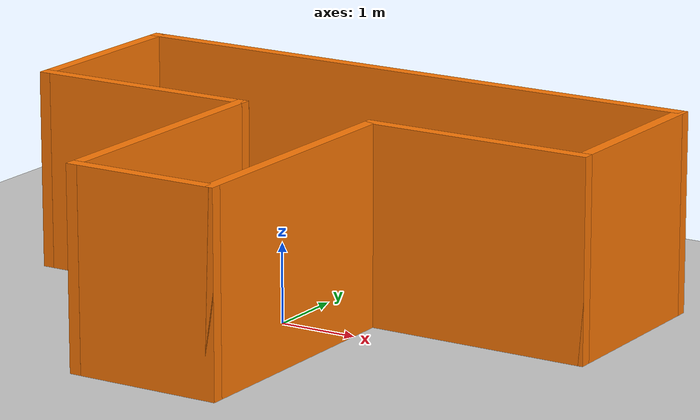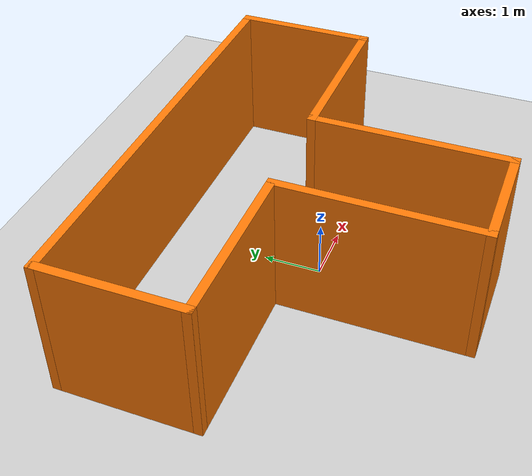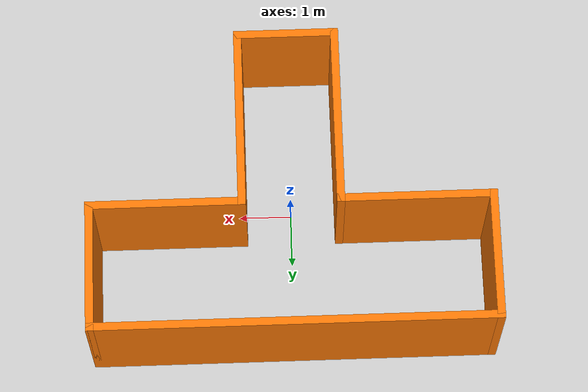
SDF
<sdf version="1.6">
 <world name="default">
  <light name="sun" type="directional">
   <pose>0 0 15 0 -0 0</pose>
   <diffuse>1 1 1 1</diffuse>
   <specular>0.1 0.1 0.1 1</specular>
   <attenuation>
    <range>1000</range>
    <constant>0.9</constant>
    <linear>0.01</linear>
    <quadratic>0.001</quadratic>
   </attenuation>
   <direction>-0.5 0.5 -1</direction>
  </light>
  <model name="ground_plane">
   <static>1</static>
   <link name="link">
    <collision name="collision">
     <geometry><plane><normal>0 0 1</normal><size>100 100</size></plane></geometry>
     <surface><friction><ode><mu>100</mu><mu2>50</mu2></ode></friction></surface>
    </collision>
    <visual name="visual">
     <transparency>1</transparency>
     <cast_shadows>0</cast_shadows>
     <geometry><plane><normal>0 0 1</normal><size>100 100</size></plane></geometry>
     <material>
      <script><uri>file://media/materials/scripts/gazebo.material</uri><name>Gazebo/Grey</name></script>
     </material>
    </visual>
   </link>
  </model>
  <gravity>0 0 -9.8</gravity>
  <magnetic_field>6e-06 2.3e-05 -4.2e-05</magnetic_field>
  <atmosphere type="adiabatic"/>
  <physics name="default_physics" default="0" type="ode">
   <max_step_size>0.001</max_step_size>
   <real_time_factor>1</real_time_factor>
   <real_time_update_rate>1000</real_time_update_rate>
  </physics>
  <scene><ambient>0.4 0.4 0.4 1</ambient><background>0.7 0.7 0.7 1</background><shadows>1</shadows></scene>
  <spherical_coordinates>
   <surface_model>EARTH_WGS84</surface_model>
   <latitude_deg>0</latitude_deg>
   <longitude_deg>0</longitude_deg>
   <elevation>0</elevation>
   <heading_deg>0</heading_deg>
  </spherical_coordinates>
  <model name="test_world">
   <link name="Wall_10">
    <collision name="Wall_10_Collision">
     <geometry><box><size>2.5 0.15 2.5</size></box></geometry>
     <pose>0 0 1.25 0 -0 0</pose>
    </collision>
    <visual name="Wall_10_Visual">
     <pose>0 0 1.25 0 -0 0</pose>
     <geometry><box><size>2.5 0.15 2.5</size></box></geometry>
     <material>
      <script><uri>file://media/materials/scripts/gazebo.material</uri><name>Gazebo/Grey</name></script>
      <ambient>0.996078 0.47451 0.0196078 1</ambient>
     </material>
    </visual>
    <pose>3.775 1.67507 0 0 0 -1.5708</pose>
   </link>
   <link name="Wall_11">
    <collision name="Wall_11_Collision">
     <geometry><box><size>3 0.15 2.5</size></box></geometry>
     <pose>0 0 1.25 0 -0 0</pose>
    </collision>
    <visual name="Wall_11_Visual">
     <pose>0 0 1.25 0 -0 0</pose>
     <geometry><box><size>3 0.15 2.5</size></box></geometry>
     <material>
      <script><uri>file://media/materials/scripts/gazebo.material</uri><name>Gazebo/Grey</name></script>
      <ambient>0.996078 0.47451 0.0196078 1</ambient>
     </material>
    </visual>
    <pose>2.35 0.500071 0 0 -0 3.14159</pose>
   </link>
   <link name="Wall_12">
    <collision name="Wall_12_Collision">
     <geometry><box><size>3.5 0.15 2.5</size></box></geometry>
     <pose>0 0 1.25 0 -0 0</pose>
    </collision>
    <visual name="Wall_12_Visual">
     <pose>0 0 1.25 0 -0 0</pose>
     <geometry><box><size>3.5 0.15 2.5</size></box></geometry>
     <material>
      <script><uri>file://media/materials/scripts/gazebo.material</uri><name>Gazebo/Grey</name></script>
      <ambient>0.996078 0.47451 0.0196078 1</ambient>
     </material>
    </visual>
    <pose>0.925 -1.17493 0 0 0 -1.5708</pose>
   </link>
   <link name="Wall_13">
    <collision name="Wall_13_Collision">
     <geometry><box><size>2 0.15 2.5</size></box></geometry>
     <pose>0 0 1.25 0 -0 0</pose>
    </collision>
    <visual name="Wall_13_Visual">
     <pose>0 0 1.25 0 -0 0</pose>
     <geometry><box><size>2 0.15 2.5</size></box></geometry>
     <material>
      <script><uri>file://media/materials/scripts/gazebo.material</uri><name>Gazebo/Grey</name></script>
      <ambient>0.996078 0.47451 0.0196078 1</ambient>
     </material>
    </visual>
    <pose>0 -2.84993 0 0 -0 3.14159</pose>
   </link>
   <link name="Wall_14">
    <collision name="Wall_14_Collision">
     <geometry><box><size>3.50075 0.15 2.5</size></box></geometry>
     <pose>0 0 1.25 0 -0 0</pose>
    </collision>
    <visual name="Wall_14_Visual">
     <pose>0 0 1.25 0 -0 0</pose>
     <geometry><box><size>3.50075 0.15 2.5</size></box></geometry>
     <material>
      <script><uri>file://media/materials/scripts/gazebo.material</uri><name>Gazebo/Grey</name></script>
      <ambient>0.996078 0.47451 0.0196078 1</ambient>
     </material>
    </visual>
    <pose>-0.925 -1.17493 0 0 -0 1.5708</pose>
   </link>
   <link name="Wall_15">
    <collision name="Wall_15_Collision">
     <geometry><box><size>3 0.15 2.5</size></box></geometry>
     <pose>0 0 1.25 0 -0 0</pose>
    </collision>
    <visual name="Wall_15_Visual">
     <pose>0 0 1.25 0 -0 0</pose>
     <geometry><box><size>3 0.15 2.5</size></box></geometry>
     <material>
      <script><uri>file://media/materials/scripts/gazebo.material</uri><name>Gazebo/Grey</name></script>
      <ambient>0.996078 0.47451 0.0196078 1</ambient>
     </material>
    </visual>
    <pose>-2.35 0.500071 0 0 -0 3.14159</pose>
   </link>
   <link name="Wall_16">
    <collision name="Wall_16_Collision">
     <geometry><box><size>2.50047 0.15 2.5</size></box></geometry>
     <pose>0 0 1.25 0 -0 0</pose>
    </collision>
    <visual name="Wall_16_Visual">
     <pose>0 0 1.25 0 -0 0</pose>
     <geometry><box><size>2.50047 0.15 2.5</size></box></geometry>
     <material>
      <script><uri>file://media/materials/scripts/gazebo.material</uri><name>Gazebo/Grey</name></script>
      <ambient>0.996078 0.47451 0.0196078 1</ambient>
     </material>
    </visual>
    <pose>-3.775 1.67507 0 0 -0 1.5708</pose>
   </link>
   <link name="Wall_9">
    <collision name="Wall_9_Collision">
     <geometry><box><size>7.70006 0.15 2.5</size></box></geometry>
     <pose>0 0 1.25 0 -0 0</pose>
    </collision>
    <visual name="Wall_9_Visual">
     <pose>0 0 1.25 0 -0 0</pose>
     <geometry><box><size>7.70006 0.15 2.5</size></box></geometry>
     <material>
      <script><uri>file://media/materials/scripts/gazebo.material</uri><name>Gazebo/Grey</name></script>
      <ambient>0.996078 0.47451 0.0196078 1</ambient>
     </material>
    </visual>
    <pose>0 2.85007 0 0 -0 0</pose>
   </link>
   <static>1</static>
  </model>
 </world>
</sdf>
